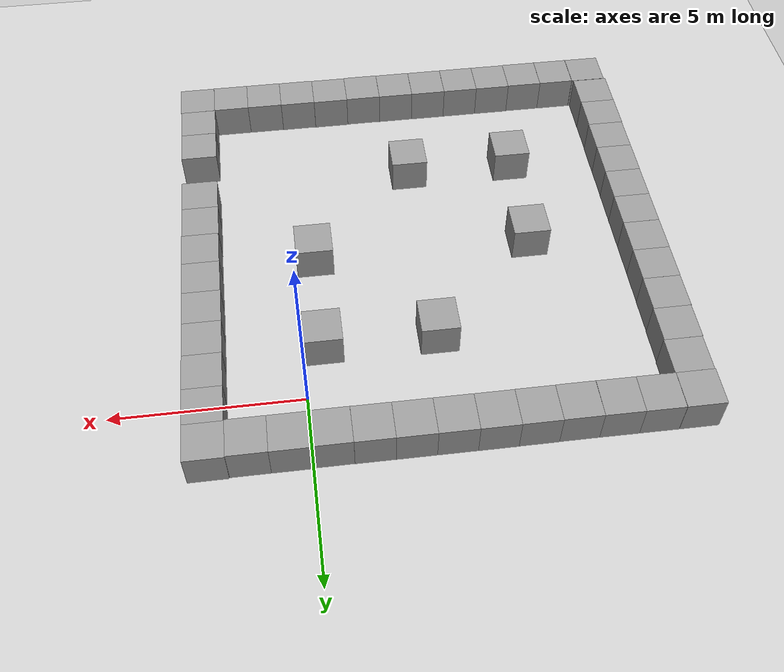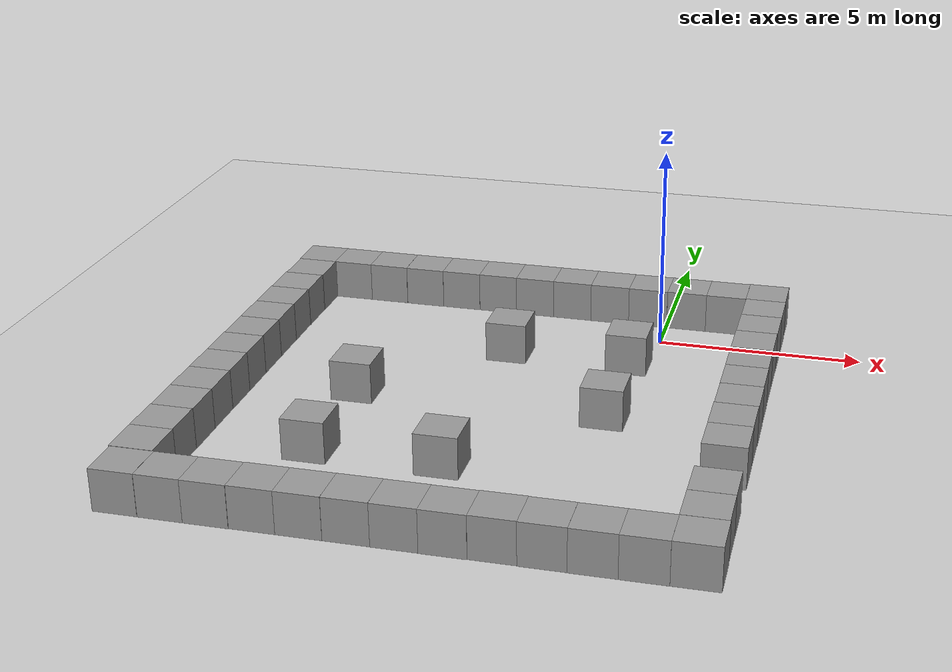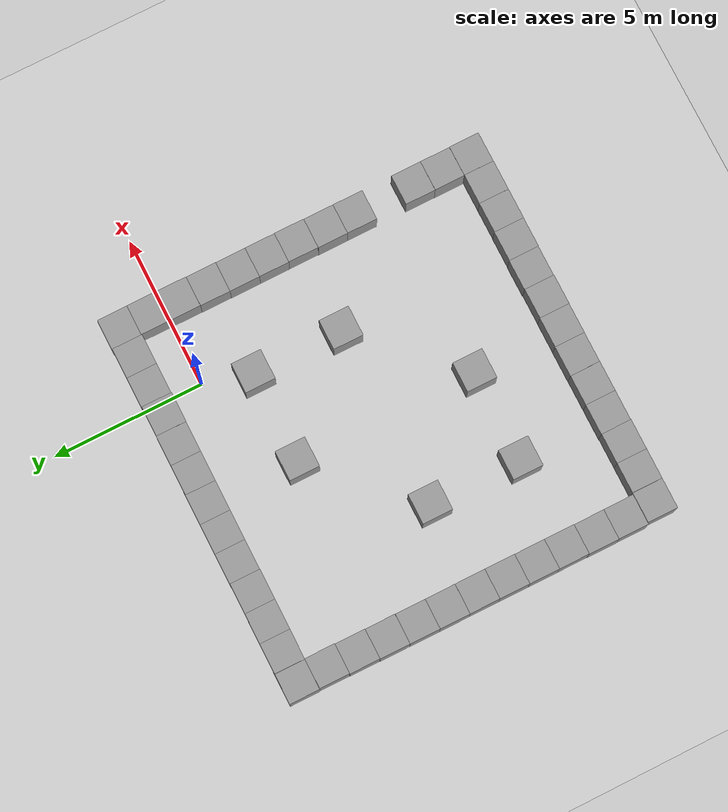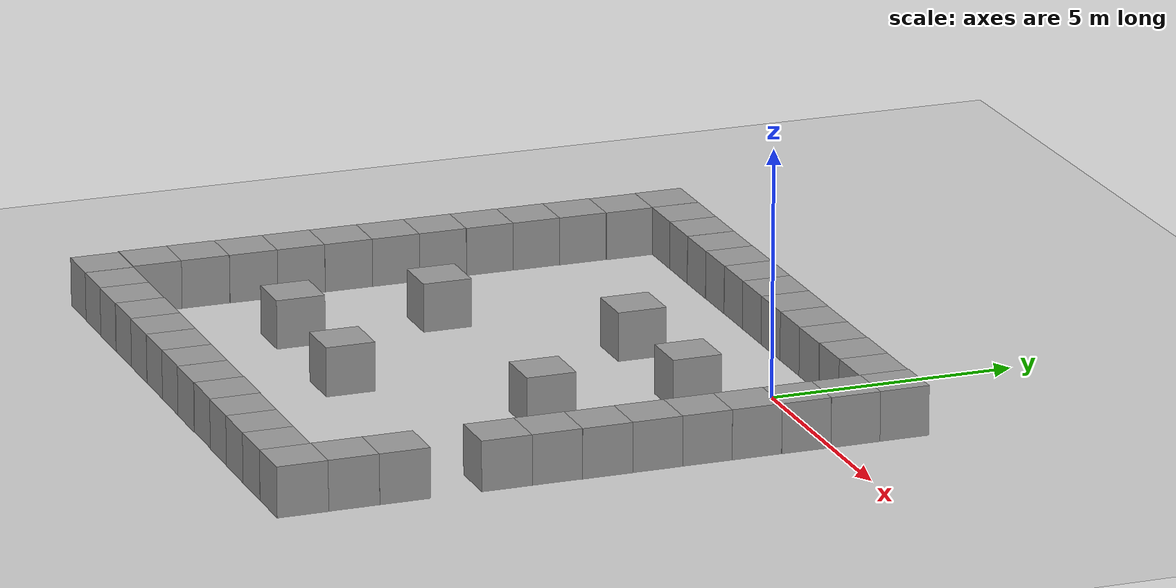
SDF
<sdf version="1.6">
 <world name="default">
  <light name="sun" type="directional">
   <pose>0 0 10 0 -0 0</pose>
   <diffuse>0.8 0.8 0.8 1</diffuse>
   <specular>0.1 0.1 0.1 1</specular>
   <attenuation>
    <range>1000</range>
    <constant>0.9</constant>
    <linear>0.01</linear>
    <quadratic>0.001</quadratic>
   </attenuation>
   <direction>-0.5 0.5 -1</direction>
  </light>
  <model name="ground_plane">
   <static>1</static>
   <link name="link">
    <collision name="collision">
     <geometry><plane><normal>0 0 1</normal><size>100 100</size></plane></geometry>
     <surface><friction><ode><mu>100</mu><mu2>50</mu2></ode></friction></surface>
    </collision>
    <visual name="visual">
     <cast_shadows>0</cast_shadows>
     <geometry><plane><normal>0 0 1</normal><size>100 100</size></plane></geometry>
     <material>
      <script><uri>file://media/materials/scripts/gazebo.material</uri><name>Gazebo/Grey</name></script>
     </material>
    </visual>
   </link>
  </model>
  <gravity>0 0 -9.8</gravity>
  <magnetic_field>6e-06 2.3e-05 -4.2e-05</magnetic_field>
  <atmosphere type="adiabatic"/>
  <physics name="default_physics" default="0" type="ode">
   <max_step_size>0.001</max_step_size>
   <real_time_factor>1</real_time_factor>
   <real_time_update_rate>1000</real_time_update_rate>
  </physics>
  <scene><ambient>0.4 0.4 0.4 1</ambient><background>0.7 0.7 0.7 1</background><shadows>1</shadows></scene>
  <spherical_coordinates>
   <surface_model>EARTH_WGS84</surface_model>
   <latitude_deg>0</latitude_deg>
   <longitude_deg>0</longitude_deg>
   <elevation>0</elevation>
   <heading_deg>0</heading_deg>
  </spherical_coordinates>
  <model name="unit_box_0_3">
   <pose>-0.485011 1.46415 0.5 0 0 -0.000431</pose>
   <link name="link">
    <inertial>
     <mass>1</mass>
     <inertia>
      <ixx>0.166667</ixx>
      <ixy>0</ixy>
      <ixz>0</ixz>
      <iyy>0.166667</iyy>
      <iyz>0</iyz>
      <izz>0.166667</izz>
     </inertia>
    </inertial>
    <collision name="collision"><geometry><box><size>1 1 1</size></box></geometry></collision>
    <visual name="visual">
     <geometry><box><size>1 1 1</size></box></geometry>
     <material>
      <script><name>Gazebo/Grey</name><uri>file://media/materials/scripts/gazebo.material</uri></script>
     </material>
    </visual>
   </link>
  </model>
  <model name="unit_box_0_4">
   <pose>0.51501 1.47742 0.5 0 0 -0.000418</pose>
   <link name="link">
    <inertial>
     <mass>1</mass>
     <inertia>
      <ixx>0.166667</ixx>
      <ixy>0</ixy>
      <ixz>0</ixz>
      <iyy>0.166667</iyy>
      <iyz>0</iyz>
      <izz>0.166667</izz>
     </inertia>
    </inertial>
    <collision name="collision"><geometry><box><size>1 1 1</size></box></geometry></collision>
    <visual name="visual">
     <geometry><box><size>1 1 1</size></box></geometry>
     <material>
      <script><name>Gazebo/Grey</name><uri>file://media/materials/scripts/gazebo.material</uri></script>
     </material>
    </visual>
   </link>
  </model>
  <model name="unit_box_0_5">
   <pose>1.51502 1.4753 0.499995 1e-05 -0 -0.000418</pose>
   <link name="link">
    <inertial>
     <mass>1</mass>
     <inertia>
      <ixx>0.166667</ixx>
      <ixy>0</ixy>
      <ixz>0</ixz>
      <iyy>0.166667</iyy>
      <iyz>0</iyz>
      <izz>0.166667</izz>
     </inertia>
    </inertial>
    <collision name="collision"><geometry><box><size>1 1 1</size></box></geometry></collision>
    <visual name="visual">
     <geometry><box><size>1 1 1</size></box></geometry>
     <material>
      <script><name>Gazebo/Grey</name><uri>file://media/materials/scripts/gazebo.material</uri></script>
     </material>
    </visual>
   </link>
  </model>
  <model name="unit_box_0_6">
   <pose>-1.48541 1.46962 0.5 0 0 -0.001229</pose>
   <link name="link">
    <inertial>
     <mass>1</mass>
     <inertia>
      <ixx>0.166667</ixx>
      <ixy>0</ixy>
      <ixz>0</ixz>
      <iyy>0.166667</iyy>
      <iyz>0</iyz>
      <izz>0.166667</izz>
     </inertia>
    </inertial>
    <collision name="collision"><geometry><box><size>1 1 1</size></box></geometry></collision>
    <visual name="visual">
     <geometry><box><size>1 1 1</size></box></geometry>
     <material>
      <script><name>Gazebo/Grey</name><uri>file://media/materials/scripts/gazebo.material</uri></script>
     </material>
    </visual>
   </link>
  </model>
  <model name="unit_box_0_7">
   <pose>-2.48543 1.47308 0.5 0 0 -0.001275</pose>
   <link name="link">
    <inertial>
     <mass>1</mass>
     <inertia>
      <ixx>0.166667</ixx>
      <ixy>0</ixy>
      <ixz>0</ixz>
      <iyy>0.166667</iyy>
      <iyz>0</iyz>
      <izz>0.166667</izz>
     </inertia>
    </inertial>
    <collision name="collision"><geometry><box><size>1 1 1</size></box></geometry></collision>
    <visual name="visual">
     <geometry><box><size>1 1 1</size></box></geometry>
     <material>
      <script><name>Gazebo/Grey</name><uri>file://media/materials/scripts/gazebo.material</uri></script>
     </material>
    </visual>
   </link>
  </model>
  <model name="unit_box_0_8">
   <pose>2.51507 1.4973 0.499995 1e-05 0 -0.000358</pose>
   <link name="link">
    <inertial>
     <mass>1</mass>
     <inertia>
      <ixx>0.166667</ixx>
      <ixy>0</ixy>
      <ixz>0</ixz>
      <iyy>0.166667</iyy>
      <iyz>0</iyz>
      <izz>0.166667</izz>
     </inertia>
    </inertial>
    <collision name="collision"><geometry><box><size>1 1 1</size></box></geometry></collision>
    <visual name="visual">
     <geometry><box><size>1 1 1</size></box></geometry>
     <material>
      <script><name>Gazebo/Grey</name><uri>file://media/materials/scripts/gazebo.material</uri></script>
     </material>
    </visual>
   </link>
  </model>
  <model name="unit_box_0_9">
   <pose>-3.48544 1.47526 0.499995 -0 1e-05 -0.001287</pose>
   <link name="link">
    <inertial>
     <mass>1</mass>
     <inertia>
      <ixx>0.166667</ixx>
      <ixy>0</ixy>
      <ixz>0</ixz>
      <iyy>0.166667</iyy>
      <iyz>0</iyz>
      <izz>0.166667</izz>
     </inertia>
    </inertial>
    <collision name="collision"><geometry><box><size>1 1 1</size></box></geometry></collision>
    <visual name="visual">
     <geometry><box><size>1 1 1</size></box></geometry>
     <material>
      <script><name>Gazebo/Grey</name><uri>file://media/materials/scripts/gazebo.material</uri></script>
     </material>
    </visual>
   </link>
  </model>
  <model name="unit_box_0_10">
   <pose>-4.48545 1.47865 0.499995 -0 9e-06 -0.00131</pose>
   <link name="link">
    <inertial>
     <mass>1</mass>
     <inertia>
      <ixx>0.166667</ixx>
      <ixy>0</ixy>
      <ixz>0</ixz>
      <iyy>0.166667</iyy>
      <iyz>0</iyz>
      <izz>0.166667</izz>
     </inertia>
    </inertial>
    <collision name="collision"><geometry><box><size>1 1 1</size></box></geometry></collision>
    <visual name="visual">
     <geometry><box><size>1 1 1</size></box></geometry>
     <material>
      <script><name>Gazebo/Grey</name><uri>file://media/materials/scripts/gazebo.material</uri></script>
     </material>
    </visual>
   </link>
  </model>
  <model name="unit_box_0_11">
   <pose>-5.48547 1.47609 0.499995 -0 -1e-05 -0.001315</pose>
   <link name="link">
    <inertial>
     <mass>1</mass>
     <inertia>
      <ixx>0.166667</ixx>
      <ixy>0</ixy>
      <ixz>0</ixz>
      <iyy>0.166667</iyy>
      <iyz>0</iyz>
      <izz>0.166667</izz>
     </inertia>
    </inertial>
    <collision name="collision"><geometry><box><size>1 1 1</size></box></geometry></collision>
    <visual name="visual">
     <geometry><box><size>1 1 1</size></box></geometry>
     <material>
      <script><name>Gazebo/Grey</name><uri>file://media/materials/scripts/gazebo.material</uri></script>
     </material>
    </visual>
   </link>
  </model>
  <model name="unit_box_0_28">
   <pose>2.5108 -6.50287 0.5 0 0 -7.6e-05</pose>
   <link name="link">
    <inertial>
     <mass>1</mass>
     <inertia>
      <ixx>0.166667</ixx>
      <ixy>0</ixy>
      <ixz>0</ixz>
      <iyy>0.166667</iyy>
      <iyz>0</iyz>
      <izz>0.166667</izz>
     </inertia>
    </inertial>
    <collision name="collision"><geometry><box><size>1 1 1</size></box></geometry></collision>
    <visual name="visual">
     <geometry><box><size>1 1 1</size></box></geometry>
     <material>
      <script><name>Gazebo/Grey</name><uri>file://media/materials/scripts/gazebo.material</uri></script>
     </material>
    </visual>
   </link>
  </model>
  <model name="unit_box_0_29">
   <pose>2.5083 -5.50283 0.499995 0 -1e-05 -0.000155</pose>
   <link name="link">
    <inertial>
     <mass>1</mass>
     <inertia>
      <ixx>0.166667</ixx>
      <ixy>0</ixy>
      <ixz>0</ixz>
      <iyy>0.166667</iyy>
      <iyz>0</iyz>
      <izz>0.166667</izz>
     </inertia>
    </inertial>
    <collision name="collision"><geometry><box><size>1 1 1</size></box></geometry></collision>
    <visual name="visual">
     <geometry><box><size>1 1 1</size></box></geometry>
     <material>
      <script><name>Gazebo/Grey</name><uri>file://media/materials/scripts/gazebo.material</uri></script>
     </material>
    </visual>
   </link>
  </model>
  <model name="unit_box_0_30">
   <pose>2.5175 -4.50282 0.499995 0 -1e-05 -0.000172</pose>
   <link name="link">
    <inertial>
     <mass>1</mass>
     <inertia>
      <ixx>0.166667</ixx>
      <ixy>0</ixy>
      <ixz>0</ixz>
      <iyy>0.166667</iyy>
      <iyz>0</iyz>
      <izz>0.166667</izz>
     </inertia>
    </inertial>
    <collision name="collision"><geometry><box><size>1 1 1</size></box></geometry></collision>
    <visual name="visual">
     <geometry><box><size>1 1 1</size></box></geometry>
     <material>
      <script><name>Gazebo/Grey</name><uri>file://media/materials/scripts/gazebo.material</uri></script>
     </material>
    </visual>
   </link>
  </model>
  <model name="unit_box_0_31">
   <pose>2.51174 -3.50281 0.5 0 0 -0.000176</pose>
   <link name="link">
    <inertial>
     <mass>1</mass>
     <inertia>
      <ixx>0.166667</ixx>
      <ixy>0</ixy>
      <ixz>0</ixz>
      <iyy>0.166667</iyy>
      <iyz>0</iyz>
      <izz>0.166667</izz>
     </inertia>
    </inertial>
    <collision name="collision"><geometry><box><size>1 1 1</size></box></geometry></collision>
    <visual name="visual">
     <geometry><box><size>1 1 1</size></box></geometry>
     <material>
      <script><name>Gazebo/Grey</name><uri>file://media/materials/scripts/gazebo.material</uri></script>
     </material>
    </visual>
   </link>
  </model>
  <model name="unit_box_0_32">
   <pose>2.50817 -2.50281 0.5 0 0 -0.000176</pose>
   <link name="link">
    <inertial>
     <mass>1</mass>
     <inertia>
      <ixx>0.166667</ixx>
      <ixy>0</ixy>
      <ixz>0</ixz>
      <iyy>0.166667</iyy>
      <iyz>0</iyz>
      <izz>0.166667</izz>
     </inertia>
    </inertial>
    <collision name="collision"><geometry><box><size>1 1 1</size></box></geometry></collision>
    <visual name="visual">
     <geometry><box><size>1 1 1</size></box></geometry>
     <material>
      <script><name>Gazebo/Grey</name><uri>file://media/materials/scripts/gazebo.material</uri></script>
     </material>
    </visual>
   </link>
  </model>
  <model name="unit_box_0_34">
   <pose>2.50946 -1.50281 0.499995 1e-05 -0 -0.000175</pose>
   <link name="link">
    <inertial>
     <mass>1</mass>
     <inertia>
      <ixx>0.166667</ixx>
      <ixy>0</ixy>
      <ixz>0</ixz>
      <iyy>0.166667</iyy>
      <iyz>0</iyz>
      <izz>0.166667</izz>
     </inertia>
    </inertial>
    <collision name="collision"><geometry><box><size>1 1 1</size></box></geometry></collision>
    <visual name="visual">
     <geometry><box><size>1 1 1</size></box></geometry>
     <material>
      <script><name>Gazebo/Grey</name><uri>file://media/materials/scripts/gazebo.material</uri></script>
     </material>
    </visual>
   </link>
  </model>
  <model name="unit_box_0_35">
   <pose>2.51728 -0.502794 0.499995 0 -1e-05 -0.000185</pose>
   <link name="link">
    <inertial>
     <mass>1</mass>
     <inertia>
      <ixx>0.166667</ixx>
      <ixy>0</ixy>
      <ixz>0</ixz>
      <iyy>0.166667</iyy>
      <iyz>0</iyz>
      <izz>0.166667</izz>
     </inertia>
    </inertial>
    <collision name="collision"><geometry><box><size>1 1 1</size></box></geometry></collision>
    <visual name="visual">
     <geometry><box><size>1 1 1</size></box></geometry>
     <material>
      <script><name>Gazebo/Grey</name><uri>file://media/materials/scripts/gazebo.material</uri></script>
     </material>
    </visual>
   </link>
  </model>
  <model name="unit_box_0_36">
   <pose>2.52057 0.497207 0.499995 1e-05 -0 -0.000192</pose>
   <link name="link">
    <inertial>
     <mass>1</mass>
     <inertia>
      <ixx>0.166667</ixx>
      <ixy>0</ixy>
      <ixz>0</ixz>
      <iyy>0.166667</iyy>
      <iyz>0</iyz>
      <izz>0.166667</izz>
     </inertia>
    </inertial>
    <collision name="collision"><geometry><box><size>1 1 1</size></box></geometry></collision>
    <visual name="visual">
     <geometry><box><size>1 1 1</size></box></geometry>
     <material>
      <script><name>Gazebo/Grey</name><uri>file://media/materials/scripts/gazebo.material</uri></script>
     </material>
    </visual>
   </link>
  </model>
  <model name="unit_box_0">
   <pose>-0.515211 -1.52723 0.499995 1e-05 -0 0</pose>
   <link name="link">
    <inertial>
     <mass>1</mass>
     <inertia>
      <ixx>0.166667</ixx>
      <ixy>0</ixy>
      <ixz>0</ixz>
      <iyy>0.166667</iyy>
      <iyz>0</iyz>
      <izz>0.166667</izz>
     </inertia>
    </inertial>
    <collision name="collision"><geometry><box><size>1 1 1</size></box></geometry></collision>
    <visual name="visual">
     <geometry><box><size>1 1 1</size></box></geometry>
     <material>
      <script><name>Gazebo/Grey</name><uri>file://media/materials/scripts/gazebo.material</uri></script>
     </material>
    </visual>
   </link>
  </model>
  <model name="unit_box_1">
   <pose>-0.520425 -4.49984 0.499995 1e-05 -0 0</pose>
   <link name="link">
    <inertial>
     <mass>1</mass>
     <inertia>
      <ixx>0.166667</ixx>
      <ixy>0</ixy>
      <ixz>0</ixz>
      <iyy>0.166667</iyy>
      <iyz>0</iyz>
      <izz>0.166667</izz>
     </inertia>
    </inertial>
    <collision name="collision"><geometry><box><size>1 1 1</size></box></geometry></collision>
    <visual name="visual">
     <geometry><box><size>1 1 1</size></box></geometry>
     <material>
      <script><name>Gazebo/Grey</name><uri>file://media/materials/scripts/gazebo.material</uri></script>
     </material>
    </visual>
   </link>
  </model>
  <model name="unit_box_4">
   <pose>-1.47391 -10.5015 0.499995 -1e-05 -0 0.003189</pose>
   <link name="link">
    <inertial>
     <mass>1</mass>
     <inertia>
      <ixx>0.166667</ixx>
      <ixy>0</ixy>
      <ixz>0</ixz>
      <iyy>0.166667</iyy>
      <iyz>0</iyz>
      <izz>0.166667</izz>
     </inertia>
    </inertial>
    <collision name="collision"><geometry><box><size>1 1 1</size></box></geometry></collision>
    <visual name="visual">
     <geometry><box><size>1 1 1</size></box></geometry>
     <material>
      <script><name>Gazebo/Grey</name><uri>file://media/materials/scripts/gazebo.material</uri></script>
     </material>
    </visual>
   </link>
  </model>
  <model name="unit_box_5_0">
   <pose>-0.473795 -10.5096 0.499995 1e-05 -0 0.003106</pose>
   <link name="link">
    <inertial>
     <mass>1</mass>
     <inertia>
      <ixx>0.166667</ixx>
      <ixy>0</ixy>
      <ixz>0</ixz>
      <iyy>0.166667</iyy>
      <iyz>0</iyz>
      <izz>0.166667</izz>
     </inertia>
    </inertial>
    <collision name="collision"><geometry><box><size>1 1 1</size></box></geometry></collision>
    <visual name="visual">
     <geometry><box><size>1 1 1</size></box></geometry>
     <material>
      <script><name>Gazebo/Grey</name><uri>file://media/materials/scripts/gazebo.material</uri></script>
     </material>
    </visual>
   </link>
  </model>
  <model name="unit_box_5_1">
   <pose>0.526451 -10.5137 0.499995 0 -1e-05 0.003181</pose>
   <link name="link">
    <inertial>
     <mass>1</mass>
     <inertia>
      <ixx>0.166667</ixx>
      <ixy>0</ixy>
      <ixz>0</ixz>
      <iyy>0.166667</iyy>
      <iyz>0</iyz>
      <izz>0.166667</izz>
     </inertia>
    </inertial>
    <collision name="collision"><geometry><box><size>1 1 1</size></box></geometry></collision>
    <visual name="visual">
     <geometry><box><size>1 1 1</size></box></geometry>
     <material>
      <script><name>Gazebo/Grey</name><uri>file://media/materials/scripts/gazebo.material</uri></script>
     </material>
    </visual>
   </link>
  </model>
  <model name="unit_box_5_2">
   <pose>1.52651 -10.5118 0.499995 0 -1e-05 0.003169</pose>
   <link name="link">
    <inertial>
     <mass>1</mass>
     <inertia>
      <ixx>0.166667</ixx>
      <ixy>0</ixy>
      <ixz>0</ixz>
      <iyy>0.166667</iyy>
      <iyz>0</iyz>
      <izz>0.166667</izz>
     </inertia>
    </inertial>
    <collision name="collision"><geometry><box><size>1 1 1</size></box></geometry></collision>
    <visual name="visual">
     <geometry><box><size>1 1 1</size></box></geometry>
     <material>
      <script><name>Gazebo/Grey</name><uri>file://media/materials/scripts/gazebo.material</uri></script>
     </material>
    </visual>
   </link>
  </model>
  <model name="unit_box_5_3">
   <pose>2.51398 -8.50357 0.5 0 -0 0.0013</pose>
   <link name="link">
    <inertial>
     <mass>1</mass>
     <inertia>
      <ixx>0.166667</ixx>
      <ixy>0</ixy>
      <ixz>0</ixz>
      <iyy>0.166667</iyy>
      <iyz>0</iyz>
      <izz>0.166667</izz>
     </inertia>
    </inertial>
    <collision name="collision"><geometry><box><size>1 1 1</size></box></geometry></collision>
    <visual name="visual">
     <geometry><box><size>1 1 1</size></box></geometry>
     <material>
      <script><name>Gazebo/Grey</name><uri>file://media/materials/scripts/gazebo.material</uri></script>
     </material>
    </visual>
   </link>
  </model>
  <model name="unit_box_5_4">
   <pose>-2.47389 -10.5161 0.499995 1e-05 -0 0.003194</pose>
   <link name="link">
    <inertial>
     <mass>1</mass>
     <inertia>
      <ixx>0.166667</ixx>
      <ixy>0</ixy>
      <ixz>0</ixz>
      <iyy>0.166667</iyy>
      <iyz>0</iyz>
      <izz>0.166667</izz>
     </inertia>
    </inertial>
    <collision name="collision"><geometry><box><size>1 1 1</size></box></geometry></collision>
    <visual name="visual">
     <geometry><box><size>1 1 1</size></box></geometry>
     <material>
      <script><name>Gazebo/Grey</name><uri>file://media/materials/scripts/gazebo.material</uri></script>
     </material>
    </visual>
   </link>
  </model>
  <model name="unit_box_5_5">
   <pose>2.5146 -9.50427 0.5 0 -0 0.002697</pose>
   <link name="link">
    <inertial>
     <mass>1</mass>
     <inertia>
      <ixx>0.166667</ixx>
      <ixy>0</ixy>
      <ixz>0</ixz>
      <iyy>0.166667</iyy>
      <iyz>0</iyz>
      <izz>0.166667</izz>
     </inertia>
    </inertial>
    <collision name="collision"><geometry><box><size>1 1 1</size></box></geometry></collision>
    <visual name="visual">
     <geometry><box><size>1 1 1</size></box></geometry>
     <material>
      <script><name>Gazebo/Grey</name><uri>file://media/materials/scripts/gazebo.material</uri></script>
     </material>
    </visual>
   </link>
  </model>
  <model name="unit_box_5_6">
   <pose>2.52663 -10.5055 0.499995 0 -1e-05 0.003363</pose>
   <link name="link">
    <inertial>
     <mass>1</mass>
     <inertia>
      <ixx>0.166667</ixx>
      <ixy>0</ixy>
      <ixz>0</ixz>
      <iyy>0.166667</iyy>
      <iyz>0</iyz>
      <izz>0.166667</izz>
     </inertia>
    </inertial>
    <collision name="collision"><geometry><box><size>1 1 1</size></box></geometry></collision>
    <visual name="visual">
     <geometry><box><size>1 1 1</size></box></geometry>
     <material>
      <script><name>Gazebo/Grey</name><uri>file://media/materials/scripts/gazebo.material</uri></script>
     </material>
    </visual>
   </link>
  </model>
  <model name="unit_box_5_7">
   <pose>-6.48559 1.47192 0.499995 1e-05 -0 -0.001453</pose>
   <link name="link">
    <inertial>
     <mass>1</mass>
     <inertia>
      <ixx>0.166667</ixx>
      <ixy>0</ixy>
      <ixz>0</ixz>
      <iyy>0.166667</iyy>
      <iyz>0</iyz>
      <izz>0.166667</izz>
     </inertia>
    </inertial>
    <collision name="collision"><geometry><box><size>1 1 1</size></box></geometry></collision>
    <visual name="visual">
     <geometry><box><size>1 1 1</size></box></geometry>
     <material>
      <script><name>Gazebo/Grey</name><uri>file://media/materials/scripts/gazebo.material</uri></script>
     </material>
    </visual>
   </link>
  </model>
  <model name="unit_box_5_8">
   <pose>-7.48807 1.47601 0.499995 -0 -1e-05 -0.006393</pose>
   <link name="link">
    <inertial>
     <mass>1</mass>
     <inertia>
      <ixx>0.166667</ixx>
      <ixy>0</ixy>
      <ixz>0</ixz>
      <iyy>0.166667</iyy>
      <iyz>0</iyz>
      <izz>0.166667</izz>
     </inertia>
    </inertial>
    <collision name="collision"><geometry><box><size>1 1 1</size></box></geometry></collision>
    <visual name="visual">
     <geometry><box><size>1 1 1</size></box></geometry>
     <material>
      <script><name>Gazebo/Grey</name><uri>file://media/materials/scripts/gazebo.material</uri></script>
     </material>
    </visual>
   </link>
  </model>
  <model name="unit_box_5_9">
   <pose>-8.48806 1.48039 0.5 0 0 -0.006395</pose>
   <link name="link">
    <inertial>
     <mass>1</mass>
     <inertia>
      <ixx>0.166667</ixx>
      <ixy>0</ixy>
      <ixz>0</ixz>
      <iyy>0.166667</iyy>
      <iyz>0</iyz>
      <izz>0.166667</izz>
     </inertia>
    </inertial>
    <collision name="collision"><geometry><box><size>1 1 1</size></box></geometry></collision>
    <visual name="visual">
     <geometry><box><size>1 1 1</size></box></geometry>
     <material>
      <script><name>Gazebo/Grey</name><uri>file://media/materials/scripts/gazebo.material</uri></script>
     </material>
    </visual>
   </link>
  </model>
  <model name="unit_box_5_10">
   <pose>-9.49114 1.48361 0.499995 1e-05 -0 -0.00029</pose>
   <link name="link">
    <inertial>
     <mass>1</mass>
     <inertia>
      <ixx>0.166667</ixx>
      <ixy>0</ixy>
      <ixz>0</ixz>
      <iyy>0.166667</iyy>
      <iyz>0</iyz>
      <izz>0.166667</izz>
     </inertia>
    </inertial>
    <collision name="collision"><geometry><box><size>1 1 1</size></box></geometry></collision>
    <visual name="visual">
     <geometry><box><size>1 1 1</size></box></geometry>
     <material>
      <script><name>Gazebo/Grey</name><uri>file://media/materials/scripts/gazebo.material</uri></script>
     </material>
    </visual>
   </link>
  </model>
  <model name="unit_box_5_11">
   <pose>-3.47406 -10.5125 0.499995 -0 -1e-05 0.0031</pose>
   <link name="link">
    <inertial>
     <mass>1</mass>
     <inertia>
      <ixx>0.166667</ixx>
      <ixy>0</ixy>
      <ixz>0</ixz>
      <iyy>0.166667</iyy>
      <iyz>0</iyz>
      <izz>0.166667</izz>
     </inertia>
    </inertial>
    <collision name="collision"><geometry><box><size>1 1 1</size></box></geometry></collision>
    <visual name="visual">
     <geometry><box><size>1 1 1</size></box></geometry>
     <material>
      <script><name>Gazebo/Grey</name><uri>file://media/materials/scripts/gazebo.material</uri></script>
     </material>
    </visual>
   </link>
  </model>
  <model name="unit_box_5_12">
   <pose>-4.47462 -10.5113 0.499995 0 1e-05 0.002139</pose>
   <link name="link">
    <inertial>
     <mass>1</mass>
     <inertia>
      <ixx>0.166667</ixx>
      <ixy>0</ixy>
      <ixz>0</ixz>
      <iyy>0.166667</iyy>
      <iyz>0</iyz>
      <izz>0.166667</izz>
     </inertia>
    </inertial>
    <collision name="collision"><geometry><box><size>1 1 1</size></box></geometry></collision>
    <visual name="visual">
     <geometry><box><size>1 1 1</size></box></geometry>
     <material>
      <script><name>Gazebo/Grey</name><uri>file://media/materials/scripts/gazebo.material</uri></script>
     </material>
    </visual>
   </link>
  </model>
  <model name="unit_box_5_13">
   <pose>-5.47492 -10.5159 0.5 0 -0 0.001552</pose>
   <link name="link">
    <inertial>
     <mass>1</mass>
     <inertia>
      <ixx>0.166667</ixx>
      <ixy>0</ixy>
      <ixz>0</ixz>
      <iyy>0.166667</iyy>
      <iyz>0</iyz>
      <izz>0.166667</izz>
     </inertia>
    </inertial>
    <collision name="collision"><geometry><box><size>1 1 1</size></box></geometry></collision>
    <visual name="visual">
     <geometry><box><size>1 1 1</size></box></geometry>
     <material>
      <script><name>Gazebo/Grey</name><uri>file://media/materials/scripts/gazebo.material</uri></script>
     </material>
    </visual>
   </link>
  </model>
  <model name="unit_box_5_14">
   <pose>-6.47496 -10.5167 0.499995 -0 -1e-05 0.001485</pose>
   <link name="link">
    <inertial>
     <mass>1</mass>
     <inertia>
      <ixx>0.166667</ixx>
      <ixy>0</ixy>
      <ixz>0</ixz>
      <iyy>0.166667</iyy>
      <iyz>0</iyz>
      <izz>0.166667</izz>
     </inertia>
    </inertial>
    <collision name="collision"><geometry><box><size>1 1 1</size></box></geometry></collision>
    <visual name="visual">
     <geometry><box><size>1 1 1</size></box></geometry>
     <material>
      <script><name>Gazebo/Grey</name><uri>file://media/materials/scripts/gazebo.material</uri></script>
     </material>
    </visual>
   </link>
  </model>
  <model name="unit_box_5_15">
   <pose>-7.47493 -10.5285 0.499995 0 1e-05 0.001483</pose>
   <link name="link">
    <inertial>
     <mass>1</mass>
     <inertia>
      <ixx>0.166667</ixx>
      <ixy>0</ixy>
      <ixz>0</ixz>
      <iyy>0.166667</iyy>
      <iyz>0</iyz>
      <izz>0.166667</izz>
     </inertia>
    </inertial>
    <collision name="collision"><geometry><box><size>1 1 1</size></box></geometry></collision>
    <visual name="visual">
     <geometry><box><size>1 1 1</size></box></geometry>
     <material>
      <script><name>Gazebo/Grey</name><uri>file://media/materials/scripts/gazebo.material</uri></script>
     </material>
    </visual>
   </link>
  </model>
  <model name="unit_box_5_16">
   <pose>-8.47496 -10.5288 0.499995 1e-05 -0 0.001471</pose>
   <link name="link">
    <inertial>
     <mass>1</mass>
     <inertia>
      <ixx>0.166667</ixx>
      <ixy>0</ixy>
      <ixz>0</ixz>
      <iyy>0.166667</iyy>
      <iyz>0</iyz>
      <izz>0.166667</izz>
     </inertia>
    </inertial>
    <collision name="collision"><geometry><box><size>1 1 1</size></box></geometry></collision>
    <visual name="visual">
     <geometry><box><size>1 1 1</size></box></geometry>
     <material>
      <script><name>Gazebo/Grey</name><uri>file://media/materials/scripts/gazebo.material</uri></script>
     </material>
    </visual>
   </link>
  </model>
  <model name="unit_box_5_17">
   <pose>-9.47979 -10.5268 0.499995 0 -1e-05 5e-06</pose>
   <link name="link">
    <inertial>
     <mass>1</mass>
     <inertia>
      <ixx>0.166667</ixx>
      <ixy>0</ixy>
      <ixz>0</ixz>
      <iyy>0.166667</iyy>
      <iyz>0</iyz>
      <izz>0.166667</izz>
     </inertia>
    </inertial>
    <collision name="collision"><geometry><box><size>1 1 1</size></box></geometry></collision>
    <visual name="visual">
     <geometry><box><size>1 1 1</size></box></geometry>
     <material>
      <script><name>Gazebo/Grey</name><uri>file://media/materials/scripts/gazebo.material</uri></script>
     </material>
    </visual>
   </link>
  </model>
  <model name="unit_box_5_18">
   <pose>-9.52679 -9.51803 0.499995 0 -1e-05 -0.000363</pose>
   <link name="link">
    <inertial>
     <mass>1</mass>
     <inertia>
      <ixx>0.166667</ixx>
      <ixy>0</ixy>
      <ixz>0</ixz>
      <iyy>0.166667</iyy>
      <iyz>0</iyz>
      <izz>0.166667</izz>
     </inertia>
    </inertial>
    <collision name="collision"><geometry><box><size>1 1 1</size></box></geometry></collision>
    <visual name="visual">
     <geometry><box><size>1 1 1</size></box></geometry>
     <material>
      <script><name>Gazebo/Grey</name><uri>file://media/materials/scripts/gazebo.material</uri></script>
     </material>
    </visual>
   </link>
  </model>
  <model name="unit_box_5_19">
   <pose>-9.53051 -8.51801 0.499995 1e-05 -0 -0.000362</pose>
   <link name="link">
    <inertial>
     <mass>1</mass>
     <inertia>
      <ixx>0.166667</ixx>
      <ixy>0</ixy>
      <ixz>0</ixz>
      <iyy>0.166667</iyy>
      <iyz>0</iyz>
      <izz>0.166667</izz>
     </inertia>
    </inertial>
    <collision name="collision"><geometry><box><size>1 1 1</size></box></geometry></collision>
    <visual name="visual">
     <geometry><box><size>1 1 1</size></box></geometry>
     <material>
      <script><name>Gazebo/Grey</name><uri>file://media/materials/scripts/gazebo.material</uri></script>
     </material>
    </visual>
   </link>
  </model>
  <model name="unit_box_5_20">
   <pose>-9.52038 -7.51801 0.499995 1e-05 0 -0.000358</pose>
   <link name="link">
    <inertial>
     <mass>1</mass>
     <inertia>
      <ixx>0.166667</ixx>
      <ixy>0</ixy>
      <ixz>0</ixz>
      <iyy>0.166667</iyy>
      <iyz>0</iyz>
      <izz>0.166667</izz>
     </inertia>
    </inertial>
    <collision name="collision"><geometry><box><size>1 1 1</size></box></geometry></collision>
    <visual name="visual">
     <geometry><box><size>1 1 1</size></box></geometry>
     <material>
      <script><name>Gazebo/Grey</name><uri>file://media/materials/scripts/gazebo.material</uri></script>
     </material>
    </visual>
   </link>
  </model>
  <model name="unit_box_5_21">
   <pose>-9.52083 -6.518 0.499995 0 1e-05 -0.000369</pose>
   <link name="link">
    <inertial>
     <mass>1</mass>
     <inertia>
      <ixx>0.166667</ixx>
      <ixy>0</ixy>
      <ixz>0</ixz>
      <iyy>0.166667</iyy>
      <iyz>0</iyz>
      <izz>0.166667</izz>
     </inertia>
    </inertial>
    <collision name="collision"><geometry><box><size>1 1 1</size></box></geometry></collision>
    <visual name="visual">
     <geometry><box><size>1 1 1</size></box></geometry>
     <material>
      <script><name>Gazebo/Grey</name><uri>file://media/materials/scripts/gazebo.material</uri></script>
     </material>
    </visual>
   </link>
  </model>
  <model name="unit_box_5_22">
   <pose>-9.51496 -5.51799 0.499995 1e-05 -0 -0.000376</pose>
   <link name="link">
    <inertial>
     <mass>1</mass>
     <inertia>
      <ixx>0.166667</ixx>
      <ixy>0</ixy>
      <ixz>0</ixz>
      <iyy>0.166667</iyy>
      <iyz>0</iyz>
      <izz>0.166667</izz>
     </inertia>
    </inertial>
    <collision name="collision"><geometry><box><size>1 1 1</size></box></geometry></collision>
    <visual name="visual">
     <geometry><box><size>1 1 1</size></box></geometry>
     <material>
      <script><name>Gazebo/Grey</name><uri>file://media/materials/scripts/gazebo.material</uri></script>
     </material>
    </visual>
   </link>
  </model>
  <model name="unit_box_5_23">
   <pose>-9.51211 -4.51793 0.499995 9e-06 -0 -0.000358</pose>
   <link name="link">
    <inertial>
     <mass>1</mass>
     <inertia>
      <ixx>0.166667</ixx>
      <ixy>0</ixy>
      <ixz>0</ixz>
      <iyy>0.166667</iyy>
      <iyz>0</iyz>
      <izz>0.166667</izz>
     </inertia>
    </inertial>
    <collision name="collision"><geometry><box><size>1 1 1</size></box></geometry></collision>
    <visual name="visual">
     <geometry><box><size>1 1 1</size></box></geometry>
     <material>
      <script><name>Gazebo/Grey</name><uri>file://media/materials/scripts/gazebo.material</uri></script>
     </material>
    </visual>
   </link>
  </model>
  <model name="unit_box_5_24">
   <pose>-9.51116 -3.51754 0.499995 -1e-05 -0 0.000416</pose>
   <link name="link">
    <inertial>
     <mass>1</mass>
     <inertia>
      <ixx>0.166667</ixx>
      <ixy>0</ixy>
      <ixz>0</ixz>
      <iyy>0.166667</iyy>
      <iyz>0</iyz>
      <izz>0.166667</izz>
     </inertia>
    </inertial>
    <collision name="collision"><geometry><box><size>1 1 1</size></box></geometry></collision>
    <visual name="visual">
     <geometry><box><size>1 1 1</size></box></geometry>
     <material>
      <script><name>Gazebo/Grey</name><uri>file://media/materials/scripts/gazebo.material</uri></script>
     </material>
    </visual>
   </link>
  </model>
  <model name="unit_box_5_25">
   <pose>-9.50813 -2.51753 0.499995 -1e-05 0 0.000413</pose>
   <link name="link">
    <inertial>
     <mass>1</mass>
     <inertia>
      <ixx>0.166667</ixx>
      <ixy>0</ixy>
      <ixz>0</ixz>
      <iyy>0.166667</iyy>
      <iyz>0</iyz>
      <izz>0.166667</izz>
     </inertia>
    </inertial>
    <collision name="collision"><geometry><box><size>1 1 1</size></box></geometry></collision>
    <visual name="visual">
     <geometry><box><size>1 1 1</size></box></geometry>
     <material>
      <script><name>Gazebo/Grey</name><uri>file://media/materials/scripts/gazebo.material</uri></script>
     </material>
    </visual>
   </link>
  </model>
  <model name="unit_box_5_26">
   <pose>-9.50203 -1.51679 0.499995 -1e-05 0 0.000481</pose>
   <link name="link">
    <inertial>
     <mass>1</mass>
     <inertia>
      <ixx>0.166667</ixx>
      <ixy>0</ixy>
      <ixz>0</ixz>
      <iyy>0.166667</iyy>
      <iyz>0</iyz>
      <izz>0.166667</izz>
     </inertia>
    </inertial>
    <collision name="collision"><geometry><box><size>1 1 1</size></box></geometry></collision>
    <visual name="visual">
     <geometry><box><size>1 1 1</size></box></geometry>
     <material>
      <script><name>Gazebo/Grey</name><uri>file://media/materials/scripts/gazebo.material</uri></script>
     </material>
    </visual>
   </link>
  </model>
  <model name="unit_box_5_27">
   <pose>-9.49202 -0.516776 0.499995 1e-05 -0 0.000471</pose>
   <link name="link">
    <inertial>
     <mass>1</mass>
     <inertia>
      <ixx>0.166667</ixx>
      <ixy>0</ixy>
      <ixz>0</ixz>
      <iyy>0.166667</iyy>
      <iyz>0</iyz>
      <izz>0.166667</izz>
     </inertia>
    </inertial>
    <collision name="collision"><geometry><box><size>1 1 1</size></box></geometry></collision>
    <visual name="visual">
     <geometry><box><size>1 1 1</size></box></geometry>
     <material>
      <script><name>Gazebo/Grey</name><uri>file://media/materials/scripts/gazebo.material</uri></script>
     </material>
    </visual>
   </link>
  </model>
  <model name="unit_box_5_28">
   <pose>-9.47583 0.483344 0.499995 -1e-05 0 0.000266</pose>
   <link name="link">
    <inertial>
     <mass>1</mass>
     <inertia>
      <ixx>0.166667</ixx>
      <ixy>0</ixy>
      <ixz>0</ixz>
      <iyy>0.166667</iyy>
      <iyz>0</iyz>
      <izz>0.166667</izz>
     </inertia>
    </inertial>
    <collision name="collision"><geometry><box><size>1 1 1</size></box></geometry></collision>
    <visual name="visual">
     <geometry><box><size>1 1 1</size></box></geometry>
     <material>
      <script><name>Gazebo/Grey</name><uri>file://media/materials/scripts/gazebo.material</uri></script>
     </material>
    </visual>
   </link>
  </model>
  <model name="unit_box_5_29">
   <pose>-3.5091 -1.51524 0.499995 1e-05 -0 0</pose>
   <link name="link">
    <inertial>
     <mass>1</mass>
     <inertia>
      <ixx>0.166667</ixx>
      <ixy>0</ixy>
      <ixz>0</ixz>
      <iyy>0.166667</iyy>
      <iyz>0</iyz>
      <izz>0.166667</izz>
     </inertia>
    </inertial>
    <collision name="collision"><geometry><box><size>1 1 1</size></box></geometry></collision>
    <visual name="visual">
     <geometry><box><size>1 1 1</size></box></geometry>
     <material>
      <script><name>Gazebo/Grey</name><uri>file://media/materials/scripts/gazebo.material</uri></script>
     </material>
    </visual>
   </link>
  </model>
  <model name="unit_box_5_32">
   <pose>-3.50985 -7.51863 0.499995 0 -1e-05 5e-06</pose>
   <link name="link">
    <inertial>
     <mass>1</mass>
     <inertia>
      <ixx>0.166667</ixx>
      <ixy>0</ixy>
      <ixz>0</ixz>
      <iyy>0.166667</iyy>
      <iyz>0</iyz>
      <izz>0.166667</izz>
     </inertia>
    </inertial>
    <collision name="collision"><geometry><box><size>1 1 1</size></box></geometry></collision>
    <visual name="visual">
     <geometry><box><size>1 1 1</size></box></geometry>
     <material>
      <script><name>Gazebo/Grey</name><uri>file://media/materials/scripts/gazebo.material</uri></script>
     </material>
    </visual>
   </link>
  </model>
  <model name="unit_box_5_33">
   <pose>-6.48334 -4.4908 0.499995 1e-05 -0 0</pose>
   <link name="link">
    <inertial>
     <mass>1</mass>
     <inertia>
      <ixx>0.166667</ixx>
      <ixy>0</ixy>
      <ixz>0</ixz>
      <iyy>0.166667</iyy>
      <iyz>0</iyz>
      <izz>0.166667</izz>
     </inertia>
    </inertial>
    <collision name="collision"><geometry><box><size>1 1 1</size></box></geometry></collision>
    <visual name="visual">
     <geometry><box><size>1 1 1</size></box></geometry>
     <material>
      <script><name>Gazebo/Grey</name><uri>file://media/materials/scripts/gazebo.material</uri></script>
     </material>
    </visual>
   </link>
  </model>
  <model name="unit_box_5_34">
   <pose>-6.51436 -7.52585 0.499995 0 -1e-05 0</pose>
   <link name="link">
    <inertial>
     <mass>1</mass>
     <inertia>
      <ixx>0.166667</ixx>
      <ixy>0</ixy>
      <ixz>0</ixz>
      <iyy>0.166667</iyy>
      <iyz>0</iyz>
      <izz>0.166667</izz>
     </inertia>
    </inertial>
    <collision name="collision"><geometry><box><size>1 1 1</size></box></geometry></collision>
    <visual name="visual">
     <geometry><box><size>1 1 1</size></box></geometry>
     <material>
      <script><name>Gazebo/Grey</name><uri>file://media/materials/scripts/gazebo.material</uri></script>
     </material>
    </visual>
   </link>
  </model>
 </world>
</sdf>
